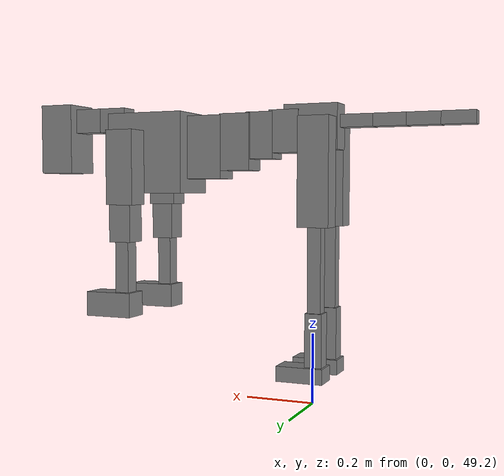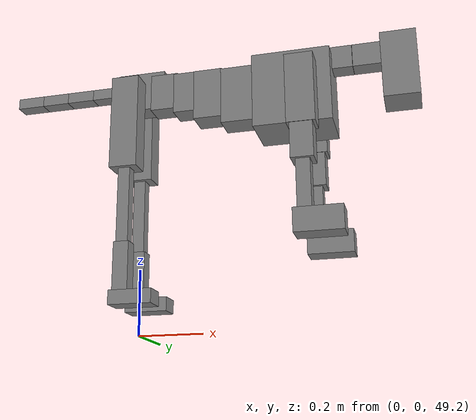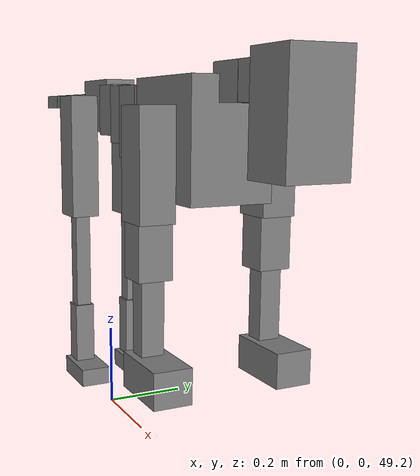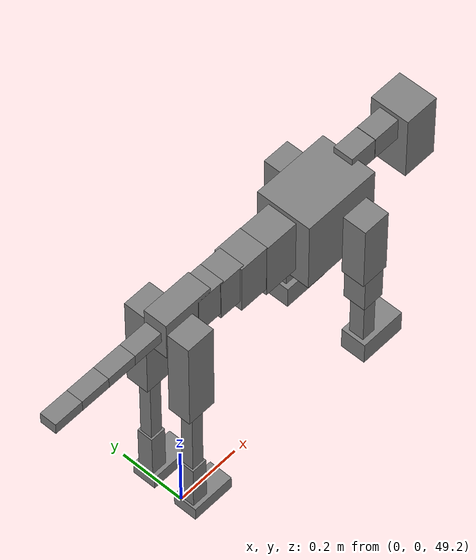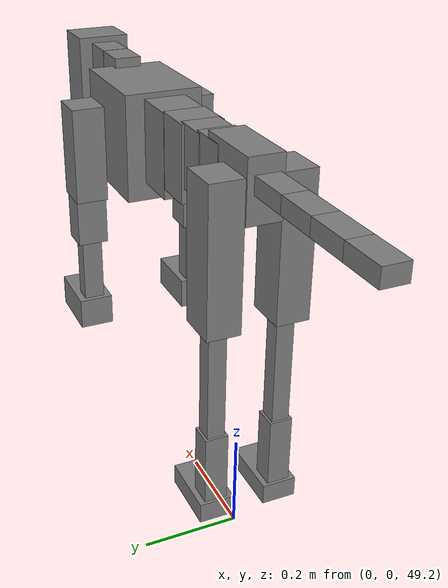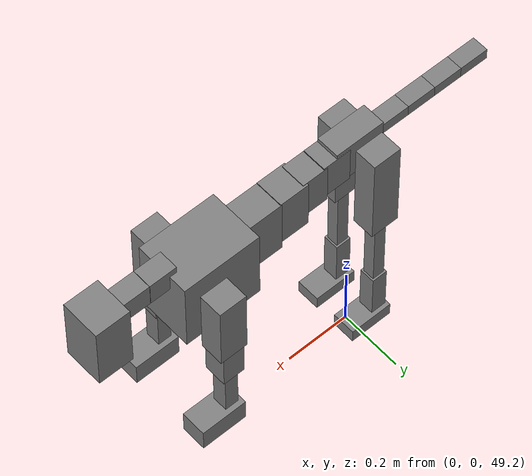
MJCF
<mujoco model="dog">

    <default>
        <joint armature="0.02" stiffness="1" damping="0.2" limited="true"/>
        <geom condim="3" friction="1 0.05 0.05" margin="0.01"/>
        <motor ctrllimited="true" ctrlrange="-1.0 1.0" forcelimited="true" gear="50"/>
    </default>

    <compiler inertiafromgeom="true" angle="radian"/>

    <option timestep="0.016" iterations="50" tolerance="1e-10" solver="Newton" jacobian="dense" cone="pyramidal"/>

    <size nconmax="20000" njmax="60000" nstack="5000000"/>
    <visual>
        <map force="0.1" zfar="30"/>
        <rgba haze="0.15 0.25 0.35 1"/>
        <quality shadowsize="2048"/>
        <global offwidth="800" offheight="800"/>
    </visual>

    <asset>
        <texture type="skybox" builtin="gradient" rgb1="0.3 0.5 0.7" rgb2="0 0 0" width="512" height="512"/>
        <texture name="texplane" type="2d" builtin="checker" rgb1=".2 .3 .4" rgb2=".1 0.15 0.2" width="512" height="512"
                 mark="cross" markrgb=".8 .8 .8"/>
        <texture name="texgeom" type="cube" builtin="flat" mark="cross" width="127" height="1278" rgb1="0.8 0.6 0.4"
                 rgb2="0.8 0.6 0.4" markrgb="1 1 1" random="0.01"/>

        <material name="matplane" reflectance="0.3" texture="texplane" texrepeat="1 1" texuniform="true"/>
        <material name="matgeom" texture="texgeom" texuniform="true" rgba="0.8 0.6 .4 1"/>
    </asset>

    <worldbody>
        <geom name="floor" pos="0 0 0" size="0 0 .25" type="plane" material="matplane" condim="3"/>

        <light directional="false" diffuse=".2 .2 .2" specular="0 0 0" pos="0 0 5" dir="0 0 -1" castshadow="false"/>
        <light mode="targetbodycom" target="torso" directional="false" diffuse=".8 .8 .8" specular="0.3 0.3 0.3"
               pos="0 0 4.0" dir="0 0 -1"/>

        <body name="root" pos="0 0 50">
            <freejoint name="root_1"/>
            <geom type="box" pos="0 0 -0.02" size="0.0774  0.0358  0.063" density="2030"/>

            <body name="spine1" pos="0.054 0 0">
                <joint name="spine1_y" axis="0 1 0" range="0 0.7" limited="true"/>
                <geom type="box" pos="0.02375 0 -0.03" size="0.04375  0.0375  0.05985" density="2030"/>

                <body name="spine2" pos="0.0612 0 0">
                    <joint name="spine2_y" axis="0 1 0" range="-0.15 0.15" limited="true"/>
                    <geom type="box" pos="0.03555  0  -0.04" size="0.04055  0.039  0.06615" density="2030"/>

                    <body name="spine3" pos="0.0730 0 0">
                        <joint name="spine3_y" axis="0 1 0" range="-0.15 0.15" limited="true"/>
                        <geom type="box" pos="0.03555  0  -0.057" size="0.04555  0.0445  0.081" density="2030"/>

                        <body name="spine4" pos="0.0780 0 0">
                            <joint name="spine4_y" axis="0 1 0" range="-0.15 0.15" limited="true"/>
                            <geom type="box" pos="0.05265  0  -0.07" size="0.05265  0.045  0.09135" density="2030"/>

                            <body name="torso" pos="0.1082 0 0">
                                <joint name="torso_y" axis="0 1 0" range="-0.15 0.15" limited="true"/>
                                <geom type="box" pos="0.11925  0  -0.085" size="0.11925  0.085  0.11745"
                                      density="2030"/>

                                <body name="neck1" pos="0.2160  0   0.0180">
                                    <joint name="neck1_y" axis="0 1 0" range="-1.2  -1" limited="true"/>
                                    <geom type="box" pos="0.0423  0  0" size="0.0423  0.03  0.036" density="2325"/>

                                    <body name="neck2" pos="0.0853  0  0">
                                        <joint name="neck2_y" axis="0 1 0" range="0.1  0" limited="true"/>
                                        <geom type="box" pos="0.0423  0  0" size="0.0423  0.03  0.036" density="2325"/>

                                        <body name="head" pos="0.0853  0  0">
                                            <joint name="head_y" axis="0 1 0" range="-0.3  -0.2" limited="true"/>
                                            <geom type="box" pos="0.0531  0  -0.055" size="0.0531  0.06  0.1044"
                                                  density="4030"/>

                                        </body>
                                    </body>
                                </body>

                                <body name="front_shoulder" pos="0.156  0   -0.0480">
                                    <joint name="front_shoulder_y" axis="0 1 0" range="-1 1.5" limited="true"/>
                                    <geom type="box" pos="0 0.13 -0.0809" size="0.0422  0.0360  0.1076" density="1158"/>
                                    <geom type="box" pos="0 -0.13 -0.0809" size="0.0422  0.0360  0.1076"
                                          density="1158"/>

                                    <body name="front_elbow" pos="0  0  -0.1618">
                                        <joint name="front_elbow_y" axis="0 1 0" range="-2 0" limited="true"/>
                                        <geom type="box" pos="0 0.13 -0.0669" size="0.0335  0.0342  0.0669"
                                              density="1081"/>
                                        <geom type="box" pos="0 -0.13 -0.0669" size="0.0335  0.0342  0.0669"
                                              density="1081"/>

                                        <body name="front_wrist" pos="0  0  -0.1339">
                                            <joint name="front_wrist_y" axis="0 1 0" range="-0.2 0" limited="true"/>
                                            <geom type="box" pos="0 0.13 -0.0807" size="0.0207  0.0230  0.0939"
                                                  density="1664"/>
                                            <geom type="box" pos="0 -0.13 -0.0807" size="0.0207  0.0230  0.0939"
                                                  density="1664"/>

                                            <body name="front_finger_end" pos="0  0  -0.1615">
                                                <joint name="front_finger_y" axis="0 1 0" range="-0.4 1"
                                                       limited="true"/>
                                                <geom type="box" pos="0.0386  0.13  -0.0204"
                                                      size="0.0707  0.0386  0.0354" density="1515"/>
                                                <geom type="box" pos="0.0386  -0.13  -0.0204"
                                                      size="0.0707  0.0386  0.0354" density="1515"/>

                                            </body>

                                        </body>
                                    </body>
                                </body>

                            </body>
                        </body>
                    </body>
                </body>
            </body>

            <body name="back_hip" pos="-0.03 0 -0.018">
                <joint name="back_hip_y" axis="0 1 0" range="-1.5 0.3" limited="true"/>
                <geom type="box" pos="0 0.07 -0.1273" size="0.0438  0.0343  0.1501" density="1154"/>
                <geom type="box" pos="0 -0.07 -0.1273" size="0.0438  0.0343  0.1501" density="1154"/>

                <body name="back_knee" pos="0  0  -0.2547">
                    <joint name="back_knee_y" axis="0 1 0" range="0 2.8" limited="true"/>
                    <geom type="box" pos="0 0.07 -0.1341" size="0.0187  0.0185  0.1497" density="1227"/>
                    <geom type="box" pos="0 -0.07 -0.1341" size="0.0187  0.0185  0.1497" density="1227"/>

                    <body name="back_ankle" pos="0  0  -0.2682">
                        <joint name="back_ankle_y" axis="0 1 0" range="-2.2 0" limited="true"/>
                        <geom type="box" pos="0 0.07 -0.0761" size="0.0239  0.0239  0.0873" density="1284"/>
                        <geom type="box" pos="0 -0.07 -0.0761" size="0.0239  0.0239  0.0873" density="1284"/>

                        <body name="back_toe_end" pos="0  0  -0.1521">
                            <joint name="back_toe_y" axis="0 1 0" range="-0.4 1" limited="true"/>
                            <geom type="box" pos="0.0361  0.07  -0.0064" size="0.0662  0.0361  0.0214" density="1515"/>
                            <geom type="box" pos="0.0361  -0.07  -0.0064" size="0.0662  0.0361  0.0214" density="1515"/>

                        </body>
                    </body>
                </body>
            </body>

            <body name="tail1" pos="-0.074 0 -0.006">
                <joint name="tail1_y" axis="0 1 0" range="-0.2 0.2" limited="true"/>
                <geom type="box" pos="-0.0536  0  0" size="0.045  0.025  0.0175" density="1587"/>

                <body name="tail2" pos="-0.09 0 0">
                    <joint name="tail2_y" axis="0 1 0" range="-0.2 0.2" limited="true"/>
                    <geom type="box" pos="-0.0536  0  0" size="0.045  0.025  0.0175" density="1587"/>

                    <body name="tail3" pos="-0.09 0 0">
                        <joint name="tail3_y" axis="0 1 0" range="-0.2 0.2" limited="true"/>
                        <geom type="box" pos="-0.0536  0  0" size="0.045  0.025  0.0175" density="1587"/>

                        <body name="tail4" pos="-0.09 0 0">
                            <joint name="tail4_y" axis="0 1 0" range="-0.2 0.2" limited="true"/>
                            <geom type="box" pos="-0.0536  0  0" size="0.045  0.025  0.0175" density="1587"/>

                        </body>
                    </body>
                </body>
            </body>
        </body>
    </worldbody>

    <actuator>
        <motor joint="spine1_y" forcerange="-150 150     "/>
        <motor joint="spine2_y" forcerange="-150 150     "/>
        <motor joint="spine3_y" forcerange="-150 150     "/>
        <motor joint="spine4_y" forcerange="-150 150     "/>
        <motor joint="torso_y" forcerange="-150 150     "/>
        <motor joint="neck1_y" forcerange="-100 100       "/>
        <motor joint="neck2_y" forcerange="-100 100       "/>
        <motor joint="head_y" forcerange="-150 150       "/>
        <motor joint="front_shoulder_y" forcerange="-142.22 197.96"/>
        <motor joint="front_elbow_y" forcerange="-178.29 170.76"/>
        <motor joint="front_wrist_y" forcerange="-63.38 120.57"/>
        <motor joint="front_finger_y" forcerange="-67.72 97.93"/>
        <motor joint="back_hip_y" forcerange="-304.85 352.89"/>
        <motor joint="back_knee_y" forcerange="-251.60 217.05"/>
        <motor joint="back_angle_y" forcerange="-147.19 135.83"/>
        <motor joint="back_toe_y" forcerange="-105.68 103.03"/>
        <motor joint="tail1_y" forcerange="-50 50     "/>
        <motor joint="tail2_y" forcerange="-50 50     "/>
        <motor joint="tail3_y" forcerange="-50 50     "/>
        <motor joint="tail4_y" forcerange="-50 50     "/>
    </actuator>
</mujoco>
